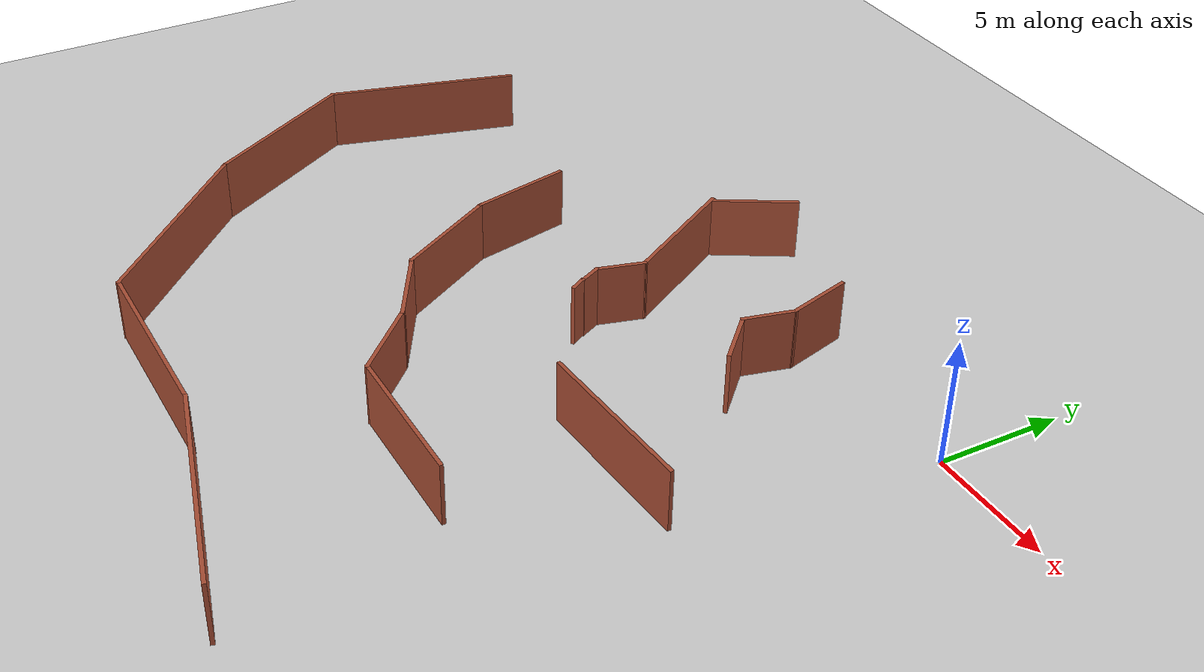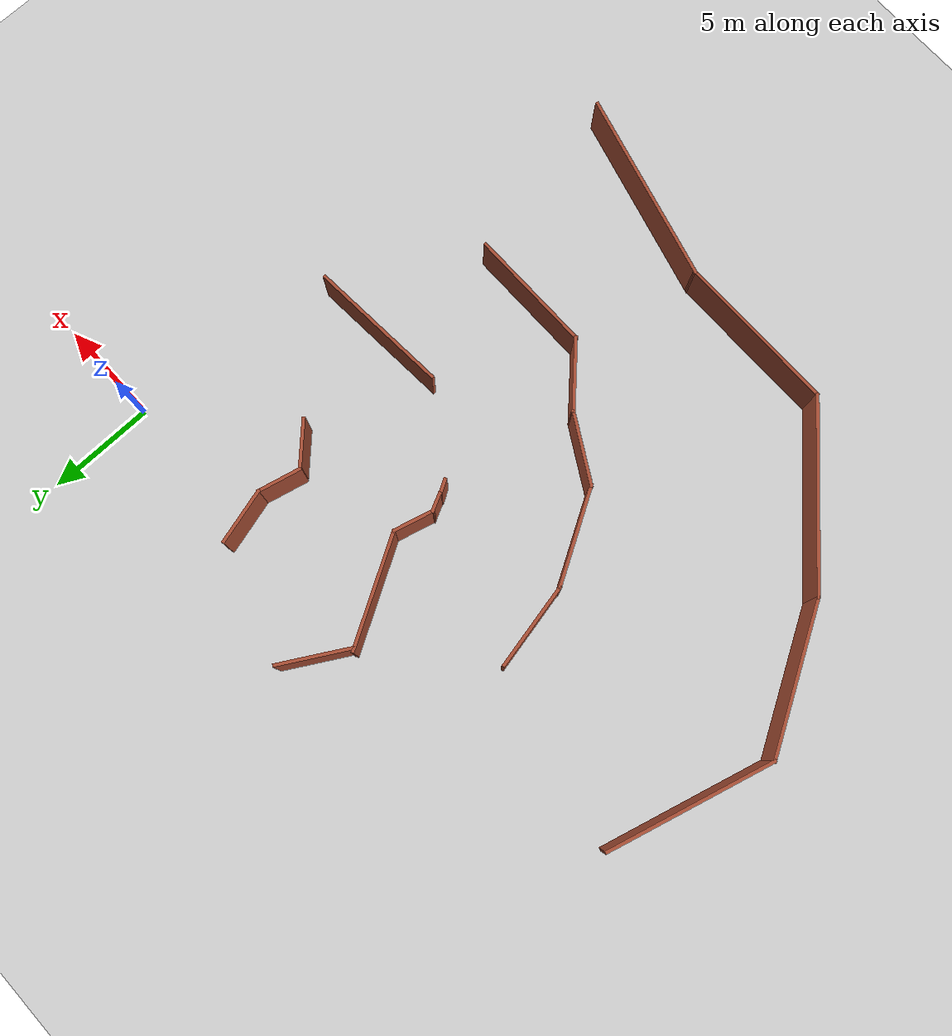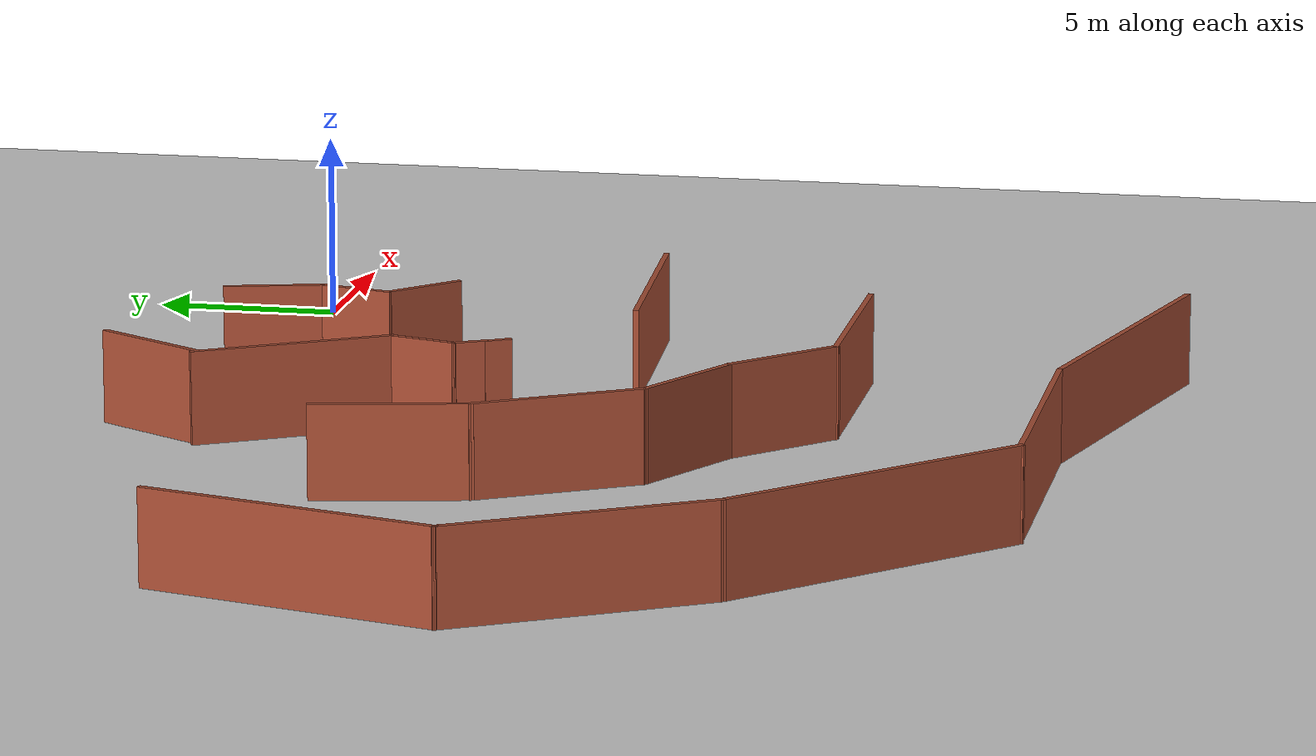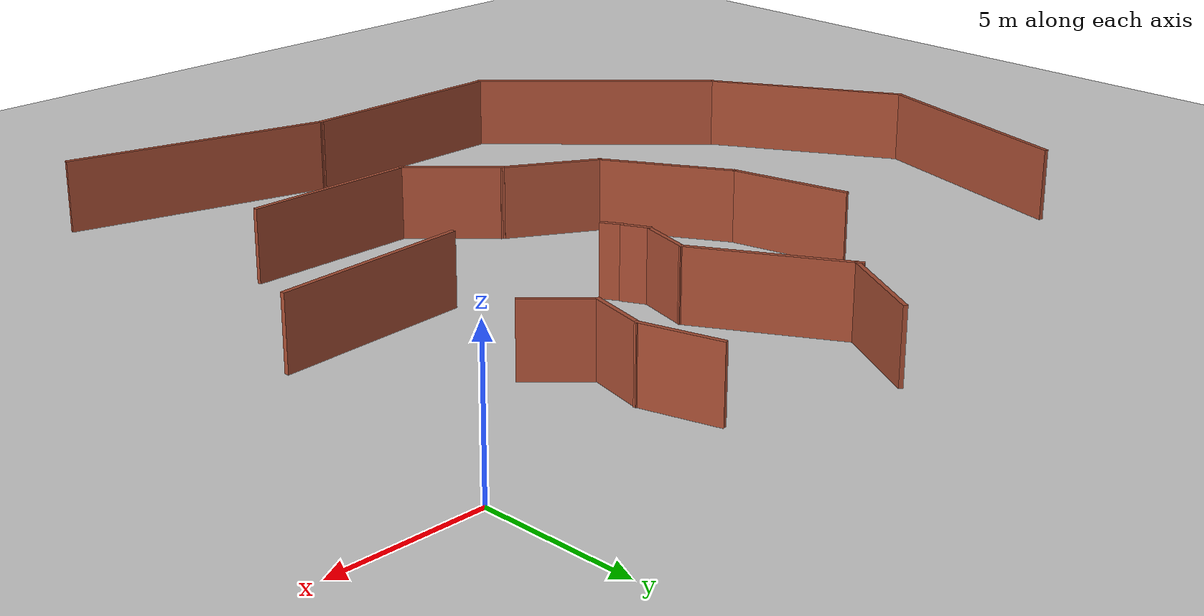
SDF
<sdf version="1.6">
 <world name="default">
  <model name="ground_plane">
   <static>1</static>
   <link name="link">
    <collision name="collision">
     <geometry><plane><normal>0 0 1</normal><size>100 100</size></plane></geometry>
    </collision>
    <visual name="visual">
     <cast_shadows>0</cast_shadows>
     <geometry><plane><normal>0 0 1</normal><size>100 100</size></plane></geometry>
     <material>
      <script><uri>file://media/materials/scripts/gazebo.material</uri><name>Gazebo/Grey</name></script>
     </material>
    </visual>
   </link>
  </model>
  <model name="Untitled1111">
   <link name="Wall_118">
    <pose>-21.3942 -6.83376 0 0 0 -1.36735</pose>
    <visual name="Wall_118_Visual">
     <pose>0 0 1.25 0 -0 0</pose>
     <geometry><box><size>4.17727 0.15 2.5</size></box></geometry>
     <material>
      <script><uri>file://media/materials/scripts/gazebo.material</uri><name>Gazebo/Bricks</name></script>
      <ambient>1 1 1 1</ambient>
      <shader type="pixel"/>
     </material>
     <meta><layer>0</layer></meta>
    </visual>
    <collision name="Wall_118_Collision">
     <pose>0 0 1.25 0 -0 0</pose>
     <geometry><box><size>4.17727 0.15 2.5</size></box></geometry>
    </collision>
   </link>
   <link name="Wall_119">
    <pose>-19.8374 -10.7977 0 0 0 -1.0472</pose>
    <visual name="Wall_119_Visual">
     <pose>0 0 1.25 0 -0 0</pose>
     <geometry><box><size>4.75 0.15 2.5</size></box></geometry>
     <material>
      <script><uri>file://media/materials/scripts/gazebo.material</uri><name>Gazebo/Bricks</name></script>
      <ambient>1 1 1 1</ambient>
      <shader type="pixel"/>
     </material>
     <meta><layer>0</layer></meta>
    </visual>
    <collision name="Wall_119_Collision">
     <pose>0 0 1.25 0 -0 0</pose>
     <geometry><box><size>4.75 0.15 2.5</size></box></geometry>
    </collision>
   </link>
   <link name="Wall_120">
    <pose>-17.2368 -13.6271 0 0 0 -0.523599</pose>
    <visual name="Wall_120_Visual">
     <pose>0 0 1.25 0 -0 0</pose>
     <geometry><box><size>3.5 0.15 2.5</size></box></geometry>
     <material>
      <script><uri>file://media/materials/scripts/gazebo.material</uri><name>Gazebo/Bricks</name></script>
      <ambient>1 1 1 1</ambient>
      <shader type="pixel"/>
     </material>
     <meta><layer>0</layer></meta>
    </visual>
    <collision name="Wall_120_Collision">
     <pose>0 0 1.25 0 -0 0</pose>
     <geometry><box><size>3.5 0.15 2.5</size></box></geometry>
    </collision>
   </link>
   <link name="Wall_121">
    <pose>-14.6018 -15.649 0 0 0 -0.785398</pose>
    <visual name="Wall_121_Visual">
     <pose>0 0 1.25 0 -0 0</pose>
     <geometry><box><size>3.5 0.15 2.5</size></box></geometry>
     <material>
      <script><uri>file://media/materials/scripts/gazebo.material</uri><name>Gazebo/Bricks</name></script>
      <ambient>1 1 1 1</ambient>
      <shader type="pixel"/>
     </material>
     <meta><layer>0</layer></meta>
    </visual>
    <collision name="Wall_121_Collision">
     <pose>0 0 1.25 0 -0 0</pose>
     <geometry><box><size>3.5 0.15 2.5</size></box></geometry>
    </collision>
   </link>
   <link name="Wall_122">
    <pose>-10.4924 -16.8334 0 0 -0 0</pose>
    <visual name="Wall_122_Visual">
     <pose>0 0 1.25 0 -0 0</pose>
     <geometry><box><size>6 0.15 2.5</size></box></geometry>
     <material>
      <script><uri>file://media/materials/scripts/gazebo.material</uri><name>Gazebo/Bricks</name></script>
      <ambient>1 1 1 1</ambient>
      <shader type="pixel"/>
     </material>
     <meta><layer>0</layer></meta>
    </visual>
    <collision name="Wall_122_Collision">
     <pose>0 0 1.25 0 -0 0</pose>
     <geometry><box><size>6 0.15 2.5</size></box></geometry>
    </collision>
   </link>
   <link name="Wall_154">
    <pose>-31.1546 -6.63401 0 0 0 -1.8326</pose>
    <visual name="Wall_154_Visual">
     <pose>0 0 1.25 0 -0 0</pose>
     <geometry><box><size>8 0.15 2.5</size></box></geometry>
     <material>
      <script><uri>file://media/materials/scripts/gazebo.material</uri><name>Gazebo/Bricks</name></script>
      <ambient>1 1 1 1</ambient>
      <shader type="pixel"/>
     </material>
     <meta><layer>0</layer></meta>
    </visual>
    <collision name="Wall_154_Collision">
     <pose>0 0 1.25 0 -0 0</pose>
     <geometry><box><size>8 0.15 2.5</size></box></geometry>
    </collision>
   </link>
   <link name="Wall_155">
    <pose>-30.3954 -13.4997 0 0 0 -1.0472</pose>
    <visual name="Wall_155_Visual">
     <pose>0 0 1.25 0 -0 0</pose>
     <geometry><box><size>7.25 0.15 2.5</size></box></geometry>
     <material>
      <script><uri>file://media/materials/scripts/gazebo.material</uri><name>Gazebo/Bricks</name></script>
      <ambient>1 1 1 1</ambient>
      <shader type="pixel"/>
     </material>
     <meta><layer>0</layer></meta>
    </visual>
    <collision name="Wall_155_Collision">
     <pose>0 0 1.25 0 -0 0</pose>
     <geometry><box><size>7.25 0.15 2.5</size></box></geometry>
    </collision>
   </link>
   <link name="Wall_156">
    <pose>-25.4915 -19.703 0 0 0 -0.785398</pose>
    <visual name="Wall_156_Visual">
     <pose>0 0 1.25 0 -0 0</pose>
     <geometry><box><size>9 0.15 2.5</size></box></geometry>
     <material>
      <script><uri>file://media/materials/scripts/gazebo.material</uri><name>Gazebo/Bricks</name></script>
      <ambient>1 1 1 1</ambient>
      <shader type="pixel"/>
     </material>
     <meta><layer>0</layer></meta>
    </visual>
    <collision name="Wall_156_Collision">
     <pose>0 0 1.25 0 -0 0</pose>
     <geometry><box><size>9 0.15 2.5</size></box></geometry>
    </collision>
   </link>
   <link name="Wall_157">
    <pose>-18.5626 -22.8319 0 0 -0 0</pose>
    <visual name="Wall_157_Visual">
     <pose>0 0 1.25 0 -0 0</pose>
     <geometry><box><size>7.75 0.15 2.5</size></box></geometry>
     <material>
      <script><uri>file://media/materials/scripts/gazebo.material</uri><name>Gazebo/Bricks</name></script>
      <ambient>1 1 1 1</ambient>
      <shader type="pixel"/>
     </material>
     <meta><layer>0</layer></meta>
    </visual>
    <collision name="Wall_157_Collision">
     <pose>0 0 1.25 0 -0 0</pose>
     <geometry><box><size>7.75 0.15 2.5</size></box></geometry>
    </collision>
   </link>
   <link name="Wall_158">
    <pose>-10.3676 -24.0096 0 0 0 -0.261799</pose>
    <visual name="Wall_158_Visual">
     <pose>0 0 1.25 0 -0 0</pose>
     <geometry><box><size>9.25 0.15 2.5</size></box></geometry>
     <material>
      <script><uri>file://media/materials/scripts/gazebo.material</uri><name>Gazebo/Bricks</name></script>
      <ambient>1 1 1 1</ambient>
      <shader type="pixel"/>
     </material>
     <meta><layer>0</layer></meta>
    </visual>
    <collision name="Wall_158_Collision">
     <pose>0 0 1.25 0 -0 0</pose>
     <geometry><box><size>9.25 0.15 2.5</size></box></geometry>
    </collision>
   </link>
   <link name="Wall_70">
    <pose>-8.90245 -4.85811 0 0 -0 2.35619</pose>
    <visual name="Wall_70_Visual">
     <pose>0 0 1.25 0 -0 0</pose>
     <geometry><box><size>2.25 0.15 2.5</size></box></geometry>
     <material>
      <script><uri>file://media/materials/scripts/gazebo.material</uri><name>Gazebo/Bricks</name></script>
      <ambient>1 1 1 1</ambient>
      <shader type="pixel"/>
     </material>
     <meta><layer>0</layer></meta>
    </visual>
    <collision name="Wall_70_Collision">
     <pose>0 0 1.25 0 -0 0</pose>
     <geometry><box><size>2.25 0.15 2.5</size></box></geometry>
    </collision>
   </link>
   <link name="Wall_71">
    <pose>-9.50613 -3.05583 0 0 -0 1.33608</pose>
    <visual name="Wall_71_Visual">
     <pose>0 0 1.25 0 -0 0</pose>
     <geometry><box><size>2.13914 0.15 2.5</size></box></geometry>
     <material>
      <script><uri>file://media/materials/scripts/gazebo.material</uri><name>Gazebo/Bricks</name></script>
      <ambient>1 1 1 1</ambient>
      <shader type="pixel"/>
     </material>
     <meta><layer>0</layer></meta>
    </visual>
    <collision name="Wall_71_Collision">
     <pose>0 0 1.25 0 -0 0</pose>
     <geometry><box><size>2.13914 0.15 2.5</size></box></geometry>
    </collision>
   </link>
   <link name="Wall_72">
    <pose>-9.61129 -0.832823 0 0 -0 1.8326</pose>
    <visual name="Wall_72_Visual">
     <pose>0 0 1.25 0 -0 0</pose>
     <geometry><box><size>2.75 0.15 2.5</size></box></geometry>
     <material>
      <script><uri>file://media/materials/scripts/gazebo.material</uri><name>Gazebo/Bricks</name></script>
      <ambient>1 1 1 1</ambient>
      <shader type="pixel"/>
     </material>
     <meta><layer>0</layer></meta>
    </visual>
    <collision name="Wall_72_Collision">
     <pose>0 0 1.25 0 -0 0</pose>
     <geometry><box><size>2.75 0.15 2.5</size></box></geometry>
    </collision>
   </link>
   <link name="Wall_83">
    <pose>-16.1943 0.77444 0 0 0 -2.0944</pose>
    <visual name="Wall_83_Visual">
     <pose>0 0 1.25 0 -0 0</pose>
     <geometry><box><size>3.5 0.15 2.5</size></box></geometry>
     <material>
      <script><uri>file://media/materials/scripts/gazebo.material</uri><name>Gazebo/Bricks</name></script>
      <ambient>1 1 1 1</ambient>
      <shader type="pixel"/>
     </material>
     <meta><layer>0</layer></meta>
    </visual>
    <collision name="Wall_83_Collision">
     <pose>0 0 1.25 0 -0 0</pose>
     <geometry><box><size>3.5 0.15 2.5</size></box></geometry>
    </collision>
   </link>
   <link name="Wall_84">
    <pose>-15.7934 -2.90565 0 0 0 -1.05033</pose>
    <visual name="Wall_84_Visual">
     <pose>0 0 1.25 0 -0 0</pose>
     <geometry><box><size>5.50281 0.15 2.5</size></box></geometry>
     <material>
      <script><uri>file://media/materials/scripts/gazebo.material</uri><name>Gazebo/Bricks</name></script>
      <ambient>1 1 1 1</ambient>
      <shader type="pixel"/>
     </material>
     <meta><layer>0</layer></meta>
    </visual>
    <collision name="Wall_84_Collision">
     <pose>0 0 1.25 0 -0 0</pose>
     <geometry><box><size>5.50281 0.15 2.5</size></box></geometry>
    </collision>
   </link>
   <link name="Wall_85">
    <pose>-14.7019 -6.12115 0 0 0 -1.8326</pose>
    <visual name="Wall_85_Visual">
     <pose>0 0 1.25 0 -0 0</pose>
     <geometry><box><size>2 0.15 2.5</size></box></geometry>
     <material>
      <script><uri>file://media/materials/scripts/gazebo.material</uri><name>Gazebo/Bricks</name></script>
      <ambient>1 1 1 1</ambient>
      <shader type="pixel"/>
     </material>
     <meta><layer>0</layer></meta>
    </visual>
    <collision name="Wall_85_Collision">
     <pose>0 0 1.25 0 -0 0</pose>
     <geometry><box><size>2 0.15 2.5</size></box></geometry>
    </collision>
   </link>
   <link name="Wall_86">
    <pose>-14.7578 -7.38322 0 0 0 -1.10884</pose>
    <visual name="Wall_86_Visual">
     <pose>0 0 1.25 0 -0 0</pose>
     <geometry><box><size>0.973489 0.15 2.5</size></box></geometry>
     <material>
      <script><uri>file://media/materials/scripts/gazebo.material</uri><name>Gazebo/Bricks</name></script>
      <ambient>1 1 1 1</ambient>
      <shader type="pixel"/>
     </material>
     <meta><layer>0</layer></meta>
    </visual>
    <collision name="Wall_86_Collision">
     <pose>0 0 1.25 0 -0 0</pose>
     <geometry><box><size>0.973489 0.15 2.5</size></box></geometry>
    </collision>
   </link>
   <link name="Wall_87">
    <pose>-14.4243 -8.07279 0 0 0 -1.0472</pose>
    <visual name="Wall_87_Visual">
     <pose>0 0 1.25 0 -0 0</pose>
     <geometry><box><size>0.75 0.15 2.5</size></box></geometry>
     <material>
      <script><uri>file://media/materials/scripts/gazebo.material</uri><name>Gazebo/Bricks</name></script>
      <ambient>1 1 1 1</ambient>
      <shader type="pixel"/>
     </material>
     <meta><layer>0</layer></meta>
    </visual>
    <collision name="Wall_87_Collision">
     <pose>0 0 1.25 0 -0 0</pose>
     <geometry><box><size>0.75 0.15 2.5</size></box></geometry>
    </collision>
   </link>
   <link name="Wall_89">
    <pose>-7.18947 -10.7633 0 0 -0 0.064767</pose>
    <visual name="Wall_89_Visual">
     <pose>0 0 1.25 0 -0 0</pose>
     <geometry><box><size>6.76699 0.15 2.5</size></box></geometry>
     <material>
      <script><uri>file://media/materials/scripts/gazebo.material</uri><name>Gazebo/Bricks</name></script>
      <ambient>1 1 1 1</ambient>
      <shader type="pixel"/>
     </material>
     <meta><layer>0</layer></meta>
    </visual>
    <collision name="Wall_89_Collision">
     <pose>0 0 1.25 0 -0 0</pose>
     <geometry><box><size>6.76699 0.15 2.5</size></box></geometry>
    </collision>
   </link>
   <static>1</static>
   <pose>2.40305 0.669162 0 0 -0 0</pose>
  </model>
 </world>
</sdf>
